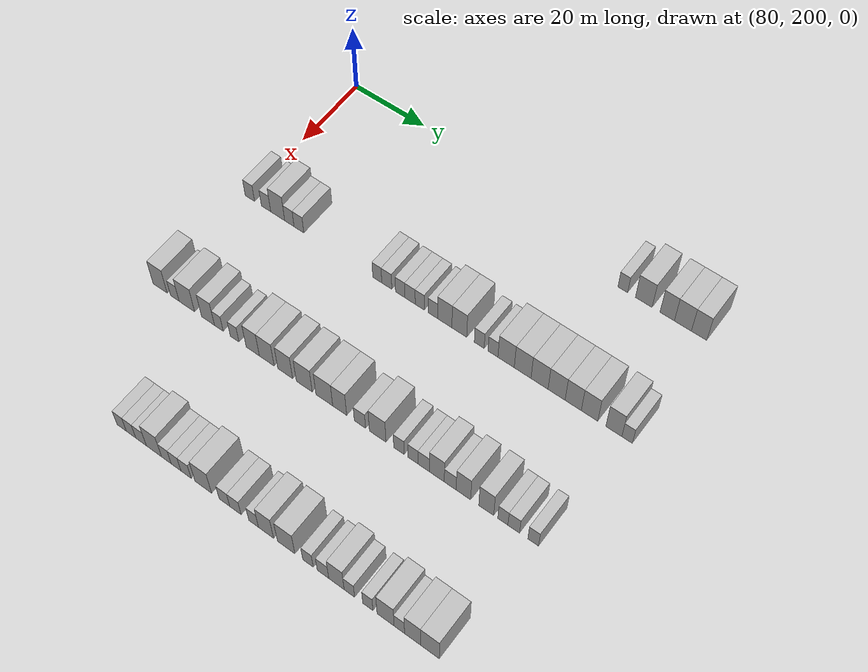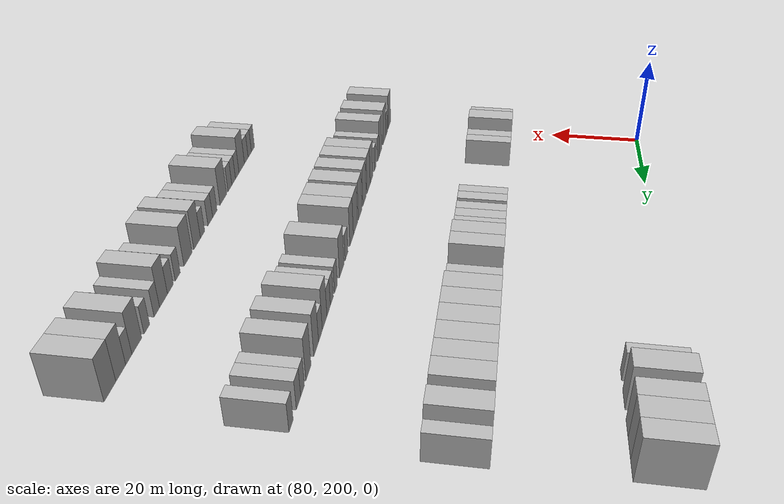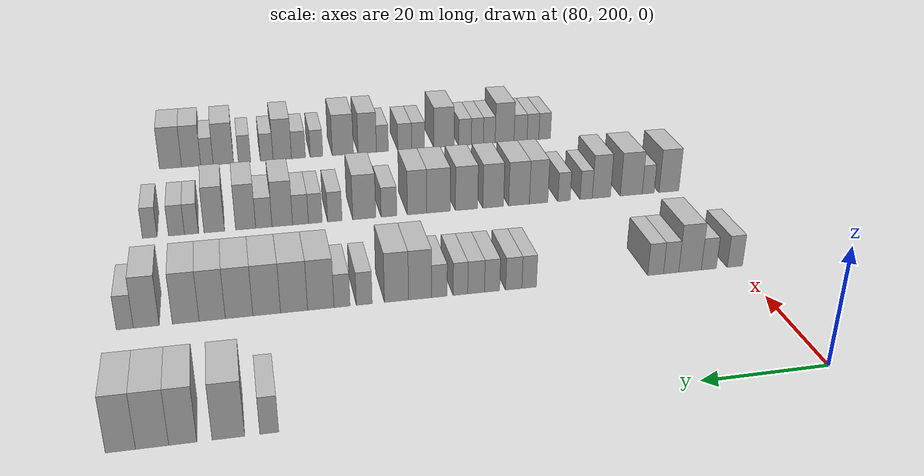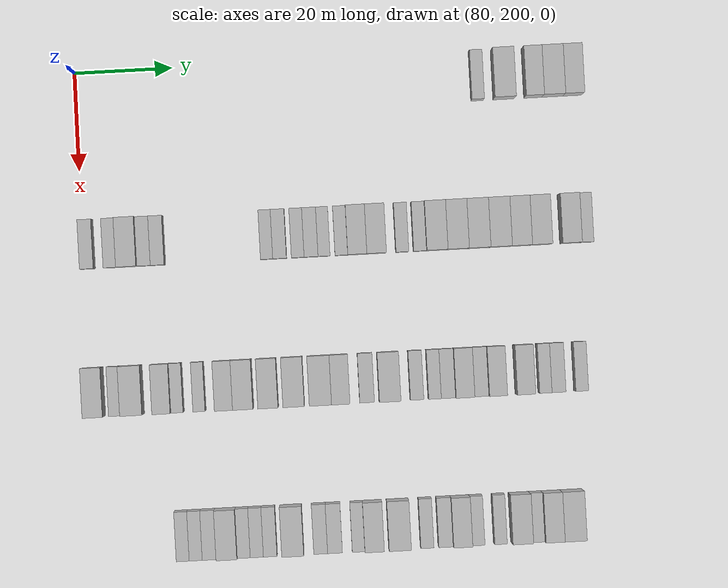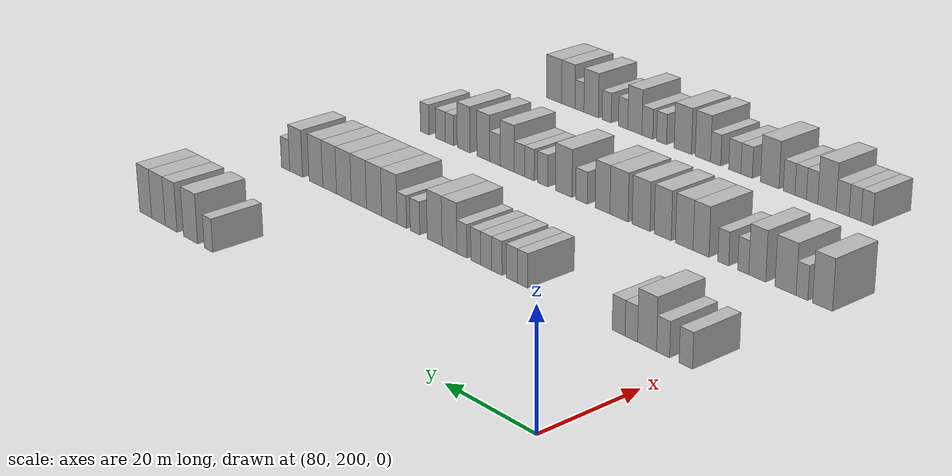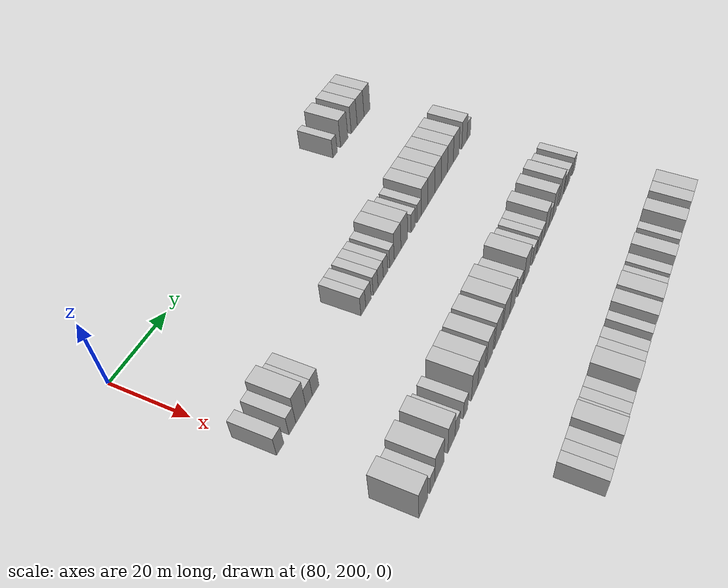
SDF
<sdf version="1.6">
 <world name="default">
  <model name="building_621">
   <static>1</static>
   <pose>85.0000 281.6081 0 0.000000 0.000000 0.000000</pose>
   <link name="link">
    <pose>0 0 3.00 0 0 0</pose>
    <collision name="collision"><geometry><box><size>10.0000 2.5139 6.0000</size></box></geometry></collision>
    <visual name="visual">
     <cast_shadows>0</cast_shadows>
     <geometry><box><size>10.0000 2.5139 6.0000</size></box></geometry>
     <material>
      <script>
       <uri>model://HANNAS_wall/materials/scripts</uri>
       <uri>model://HANNAS_wall/materials/textures</uri>
       <name>vrc/HANNAS_wall</name>
      </script>
     </material>
    </visual>
   </link>
  </model>
  <model name="building_622">
   <static>1</static>
   <pose>85.0000 287.0090 0 0.000000 0.000000 0.000000</pose>
   <link name="link">
    <pose>0 0 4.50 0 0 0</pose>
    <collision name="collision"><geometry><box><size>10.0000 4.2879 9.0000</size></box></geometry></collision>
    <visual name="visual">
     <cast_shadows>0</cast_shadows>
     <geometry><box><size>10.0000 4.2879 9.0000</size></box></geometry>
     <material>
      <script>
       <uri>model://HANNAS_wall/materials/scripts</uri>
       <uri>model://HANNAS_wall/materials/textures</uri>
       <name>vrc/HANNAS_wall</name>
      </script>
     </material>
    </visual>
   </link>
  </model>
  <model name="building_623">
   <static>1</static>
   <pose>85.0000 292.9761 0 0.000000 0.000000 0.000000</pose>
   <link name="link">
    <pose>0 0 4.50 0 0 0</pose>
    <collision name="collision"><geometry><box><size>10.0000 3.6462 9.0000</size></box></geometry></collision>
    <visual name="visual">
     <cast_shadows>0</cast_shadows>
     <geometry><box><size>10.0000 3.6462 9.0000</size></box></geometry>
     <material>
      <script>
       <uri>model://HANNAS_wall/materials/scripts</uri>
       <uri>model://HANNAS_wall/materials/textures</uri>
       <name>vrc/HANNAS_wall</name>
      </script>
     </material>
    </visual>
   </link>
  </model>
  <model name="building_624">
   <static>1</static>
   <pose>85.0000 296.9343 0 0.000000 0.000000 0.000000</pose>
   <link name="link">
    <pose>0 0 4.50 0 0 0</pose>
    <collision name="collision"><geometry><box><size>10.0000 4.2701 9.0000</size></box></geometry></collision>
    <visual name="visual">
     <cast_shadows>0</cast_shadows>
     <geometry><box><size>10.0000 4.2701 9.0000</size></box></geometry>
     <material>
      <script>
       <uri>model://HANNAS_wall/materials/scripts</uri>
       <uri>model://HANNAS_wall/materials/textures</uri>
       <name>vrc/HANNAS_wall</name>
      </script>
     </material>
    </visual>
   </link>
  </model>
  <model name="building_625">
   <static>1</static>
   <pose>85.0000 300.9873 0 0.000000 0.000000 0.000000</pose>
   <link name="link">
    <pose>0 0 4.50 0 0 0</pose>
    <collision name="collision"><geometry><box><size>10.0000 3.8361 9.0000</size></box></geometry></collision>
    <visual name="visual">
     <cast_shadows>0</cast_shadows>
     <geometry><box><size>10.0000 3.8361 9.0000</size></box></geometry>
     <material>
      <script>
       <uri>model://HANNAS_wall/materials/scripts</uri>
       <uri>model://HANNAS_wall/materials/textures</uri>
       <name>vrc/HANNAS_wall</name>
      </script>
     </material>
    </visual>
   </link>
  </model>
  <model name="building_826">
   <static>1</static>
   <pose>115.0000 200.7581 0 0.000000 0.000000 0.000000</pose>
   <link name="link">
    <pose>0 0 3.00 0 0 0</pose>
    <collision name="collision"><geometry><box><size>10.0000 2.7842 6.0000</size></box></geometry></collision>
    <visual name="visual">
     <cast_shadows>0</cast_shadows>
     <geometry><box><size>10.0000 2.7842 6.0000</size></box></geometry>
     <material>
      <script>
       <uri>model://HANNAS_wall/materials/scripts</uri>
       <uri>model://HANNAS_wall/materials/textures</uri>
       <name>vrc/HANNAS_wall</name>
      </script>
     </material>
    </visual>
   </link>
  </model>
  <model name="building_827">
   <static>1</static>
   <pose>115.0000 205.5155 0 0.000000 0.000000 0.000000</pose>
   <link name="link">
    <pose>0 0 3.00 0 0 0</pose>
    <collision name="collision"><geometry><box><size>10.0000 2.7307 6.0000</size></box></geometry></collision>
    <visual name="visual">
     <cast_shadows>0</cast_shadows>
     <geometry><box><size>10.0000 2.7307 6.0000</size></box></geometry>
     <material>
      <script>
       <uri>model://HANNAS_wall/materials/scripts</uri>
       <uri>model://HANNAS_wall/materials/textures</uri>
       <name>vrc/HANNAS_wall</name>
      </script>
     </material>
    </visual>
   </link>
  </model>
  <model name="building_828">
   <static>1</static>
   <pose>115.0000 208.9213 0 0.000000 0.000000 0.000000</pose>
   <link name="link">
    <pose>0 0 4.50 0 0 0</pose>
    <collision name="collision"><geometry><box><size>10.0000 4.0809 9.0000</size></box></geometry></collision>
    <visual name="visual">
     <cast_shadows>0</cast_shadows>
     <geometry><box><size>10.0000 4.0809 9.0000</size></box></geometry>
     <material>
      <script>
       <uri>model://HANNAS_wall/materials/scripts</uri>
       <uri>model://HANNAS_wall/materials/textures</uri>
       <name>vrc/HANNAS_wall</name>
      </script>
     </material>
    </visual>
   </link>
  </model>
  <model name="building_829">
   <static>1</static>
   <pose>115.0000 212.3199 0 0.000000 0.000000 0.000000</pose>
   <link name="link">
    <pose>0 0 3.00 0 0 0</pose>
    <collision name="collision"><geometry><box><size>10.0000 2.7162 6.0000</size></box></geometry></collision>
    <visual name="visual">
     <cast_shadows>0</cast_shadows>
     <geometry><box><size>10.0000 2.7162 6.0000</size></box></geometry>
     <material>
      <script>
       <uri>model://HANNAS_wall/materials/scripts</uri>
       <uri>model://HANNAS_wall/materials/textures</uri>
       <name>vrc/HANNAS_wall</name>
      </script>
     </material>
    </visual>
   </link>
  </model>
  <model name="building_830">
   <static>1</static>
   <pose>115.0000 215.0822 0 0.000000 0.000000 0.000000</pose>
   <link name="link">
    <pose>0 0 3.00 0 0 0</pose>
    <collision name="collision"><geometry><box><size>10.0000 2.8084 6.0000</size></box></geometry></collision>
    <visual name="visual">
     <cast_shadows>0</cast_shadows>
     <geometry><box><size>10.0000 2.8084 6.0000</size></box></geometry>
     <material>
      <script>
       <uri>model://HANNAS_wall/materials/scripts</uri>
       <uri>model://HANNAS_wall/materials/textures</uri>
       <name>vrc/HANNAS_wall</name>
      </script>
     </material>
    </visual>
   </link>
  </model>
  <model name="building_831">
   <static>1</static>
   <pose>115.0000 237.1993 0 0.000000 0.000000 0.000000</pose>
   <link name="link">
    <pose>0 0 3.00 0 0 0</pose>
    <collision name="collision"><geometry><box><size>10.0000 2.4753 6.0000</size></box></geometry></collision>
    <visual name="visual">
     <cast_shadows>0</cast_shadows>
     <geometry><box><size>10.0000 2.4753 6.0000</size></box></geometry>
     <material>
      <script>
       <uri>model://HANNAS_wall/materials/scripts</uri>
       <uri>model://HANNAS_wall/materials/textures</uri>
       <name>vrc/HANNAS_wall</name>
      </script>
     </material>
    </visual>
   </link>
  </model>
  <model name="building_832">
   <static>1</static>
   <pose>115.0000 239.8226 0 0.000000 0.000000 0.000000</pose>
   <link name="link">
    <pose>0 0 3.00 0 0 0</pose>
    <collision name="collision"><geometry><box><size>10.0000 2.7713 6.0000</size></box></geometry></collision>
    <visual name="visual">
     <cast_shadows>0</cast_shadows>
     <geometry><box><size>10.0000 2.7713 6.0000</size></box></geometry>
     <material>
      <script>
       <uri>model://HANNAS_wall/materials/scripts</uri>
       <uri>model://HANNAS_wall/materials/textures</uri>
       <name>vrc/HANNAS_wall</name>
      </script>
     </material>
    </visual>
   </link>
  </model>
  <model name="building_833">
   <static>1</static>
   <pose>115.0000 243.4948 0 0.000000 0.000000 0.000000</pose>
   <link name="link">
    <pose>0 0 3.00 0 0 0</pose>
    <collision name="collision"><geometry><box><size>10.0000 2.5731 6.0000</size></box></geometry></collision>
    <visual name="visual">
     <cast_shadows>0</cast_shadows>
     <geometry><box><size>10.0000 2.5731 6.0000</size></box></geometry>
     <material>
      <script>
       <uri>model://HANNAS_wall/materials/scripts</uri>
       <uri>model://HANNAS_wall/materials/textures</uri>
       <name>vrc/HANNAS_wall</name>
      </script>
     </material>
    </visual>
   </link>
  </model>
  <model name="building_834">
   <static>1</static>
   <pose>115.0000 246.1912 0 0.000000 0.000000 0.000000</pose>
   <link name="link">
    <pose>0 0 3.00 0 0 0</pose>
    <collision name="collision"><geometry><box><size>10.0000 2.8197 6.0000</size></box></geometry></collision>
    <visual name="visual">
     <cast_shadows>0</cast_shadows>
     <geometry><box><size>10.0000 2.8197 6.0000</size></box></geometry>
     <material>
      <script>
       <uri>model://HANNAS_wall/materials/scripts</uri>
       <uri>model://HANNAS_wall/materials/textures</uri>
       <name>vrc/HANNAS_wall</name>
      </script>
     </material>
    </visual>
   </link>
  </model>
  <model name="building_835">
   <static>1</static>
   <pose>115.0000 248.8176 0 0.000000 0.000000 0.000000</pose>
   <link name="link">
    <pose>0 0 3.00 0 0 0</pose>
    <collision name="collision"><geometry><box><size>10.0000 2.4330 6.0000</size></box></geometry></collision>
    <visual name="visual">
     <cast_shadows>0</cast_shadows>
     <geometry><box><size>10.0000 2.4330 6.0000</size></box></geometry>
     <material>
      <script>
       <uri>model://HANNAS_wall/materials/scripts</uri>
       <uri>model://HANNAS_wall/materials/textures</uri>
       <name>vrc/HANNAS_wall</name>
      </script>
     </material>
    </visual>
   </link>
  </model>
  <model name="building_836">
   <static>1</static>
   <pose>115.0000 252.3148 0 0.000000 0.000000 0.000000</pose>
   <link name="link">
    <pose>0 0 3.00 0 0 0</pose>
    <collision name="collision"><geometry><box><size>10.0000 2.5614 6.0000</size></box></geometry></collision>
    <visual name="visual">
     <cast_shadows>0</cast_shadows>
     <geometry><box><size>10.0000 2.5614 6.0000</size></box></geometry>
     <material>
      <script>
       <uri>model://HANNAS_wall/materials/scripts</uri>
       <uri>model://HANNAS_wall/materials/textures</uri>
       <name>vrc/HANNAS_wall</name>
      </script>
     </material>
    </visual>
   </link>
  </model>
  <model name="building_837">
   <static>1</static>
   <pose>115.0000 255.5168 0 0.000000 0.000000 0.000000</pose>
   <link name="link">
    <pose>0 0 4.50 0 0 0</pose>
    <collision name="collision"><geometry><box><size>10.0000 3.8425 9.0000</size></box></geometry></collision>
    <visual name="visual">
     <cast_shadows>0</cast_shadows>
     <geometry><box><size>10.0000 3.8425 9.0000</size></box></geometry>
     <material>
      <script>
       <uri>model://HANNAS_wall/materials/scripts</uri>
       <uri>model://HANNAS_wall/materials/textures</uri>
       <name>vrc/HANNAS_wall</name>
      </script>
     </material>
    </visual>
   </link>
  </model>
  <model name="building_838">
   <static>1</static>
   <pose>115.0000 259.4077 0 0.000000 0.000000 0.000000</pose>
   <link name="link">
    <pose>0 0 4.50 0 0 0</pose>
    <collision name="collision"><geometry><box><size>10.0000 3.9394 9.0000</size></box></geometry></collision>
    <visual name="visual">
     <cast_shadows>0</cast_shadows>
     <geometry><box><size>10.0000 3.9394 9.0000</size></box></geometry>
     <material>
      <script>
       <uri>model://HANNAS_wall/materials/scripts</uri>
       <uri>model://HANNAS_wall/materials/textures</uri>
       <name>vrc/HANNAS_wall</name>
      </script>
     </material>
    </visual>
   </link>
  </model>
  <model name="building_839">
   <static>1</static>
   <pose>115.0000 264.6693 0 0.000000 0.000000 0.000000</pose>
   <link name="link">
    <pose>0 0 3.00 0 0 0</pose>
    <collision name="collision"><geometry><box><size>10.0000 2.5838 6.0000</size></box></geometry></collision>
    <visual name="visual">
     <cast_shadows>0</cast_shadows>
     <geometry><box><size>10.0000 2.5838 6.0000</size></box></geometry>
     <material>
      <script>
       <uri>model://HANNAS_wall/materials/scripts</uri>
       <uri>model://HANNAS_wall/materials/textures</uri>
       <name>vrc/HANNAS_wall</name>
      </script>
     </material>
    </visual>
   </link>
  </model>
  <model name="building_840">
   <static>1</static>
   <pose>115.0000 268.2557 0 0.000000 0.000000 0.000000</pose>
   <link name="link">
    <pose>0 0 3.00 0 0 0</pose>
    <collision name="collision"><geometry><box><size>10.0000 2.5889 6.0000</size></box></geometry></collision>
    <visual name="visual">
     <cast_shadows>0</cast_shadows>
     <geometry><box><size>10.0000 2.5889 6.0000</size></box></geometry>
     <material>
      <script>
       <uri>model://HANNAS_wall/materials/scripts</uri>
       <uri>model://HANNAS_wall/materials/textures</uri>
       <name>vrc/HANNAS_wall</name>
      </script>
     </material>
    </visual>
   </link>
  </model>
  <model name="building_841">
   <static>1</static>
   <pose>115.0000 271.6655 0 0.000000 0.000000 0.000000</pose>
   <link name="link">
    <pose>0 0 4.50 0 0 0</pose>
    <collision name="collision"><geometry><box><size>10.0000 4.2307 9.0000</size></box></geometry></collision>
    <visual name="visual">
     <cast_shadows>0</cast_shadows>
     <geometry><box><size>10.0000 4.2307 9.0000</size></box></geometry>
     <material>
      <script>
       <uri>model://HANNAS_wall/materials/scripts</uri>
       <uri>model://HANNAS_wall/materials/textures</uri>
       <name>vrc/HANNAS_wall</name>
      </script>
     </material>
    </visual>
   </link>
  </model>
  <model name="building_842">
   <static>1</static>
   <pose>115.0000 275.9256 0 0.000000 0.000000 0.000000</pose>
   <link name="link">
    <pose>0 0 4.50 0 0 0</pose>
    <collision name="collision"><geometry><box><size>10.0000 4.2897 9.0000</size></box></geometry></collision>
    <visual name="visual">
     <cast_shadows>0</cast_shadows>
     <geometry><box><size>10.0000 4.2897 9.0000</size></box></geometry>
     <material>
      <script>
       <uri>model://HANNAS_wall/materials/scripts</uri>
       <uri>model://HANNAS_wall/materials/textures</uri>
       <name>vrc/HANNAS_wall</name>
      </script>
     </material>
    </visual>
   </link>
  </model>
  <model name="building_843">
   <static>1</static>
   <pose>115.0000 280.2471 0 0.000000 0.000000 0.000000</pose>
   <link name="link">
    <pose>0 0 4.50 0 0 0</pose>
    <collision name="collision"><geometry><box><size>10.0000 4.3532 9.0000</size></box></geometry></collision>
    <visual name="visual">
     <cast_shadows>0</cast_shadows>
     <geometry><box><size>10.0000 4.3532 9.0000</size></box></geometry>
     <material>
      <script>
       <uri>model://HANNAS_wall/materials/scripts</uri>
       <uri>model://HANNAS_wall/materials/textures</uri>
       <name>vrc/HANNAS_wall</name>
      </script>
     </material>
    </visual>
   </link>
  </model>
  <model name="building_844">
   <static>1</static>
   <pose>115.0000 284.5766 0 0.000000 0.000000 0.000000</pose>
   <link name="link">
    <pose>0 0 4.50 0 0 0</pose>
    <collision name="collision"><geometry><box><size>10.0000 4.3059 9.0000</size></box></geometry></collision>
    <visual name="visual">
     <cast_shadows>0</cast_shadows>
     <geometry><box><size>10.0000 4.3059 9.0000</size></box></geometry>
     <material>
      <script>
       <uri>model://HANNAS_wall/materials/scripts</uri>
       <uri>model://HANNAS_wall/materials/textures</uri>
       <name>vrc/HANNAS_wall</name>
      </script>
     </material>
    </visual>
   </link>
  </model>
  <model name="building_845">
   <static>1</static>
   <pose>115.0000 288.7550 0 0.000000 0.000000 0.000000</pose>
   <link name="link">
    <pose>0 0 4.50 0 0 0</pose>
    <collision name="collision"><geometry><box><size>10.0000 4.0509 9.0000</size></box></geometry></collision>
    <visual name="visual">
     <cast_shadows>0</cast_shadows>
     <geometry><box><size>10.0000 4.0509 9.0000</size></box></geometry>
     <material>
      <script>
       <uri>model://HANNAS_wall/materials/scripts</uri>
       <uri>model://HANNAS_wall/materials/textures</uri>
       <name>vrc/HANNAS_wall</name>
      </script>
     </material>
    </visual>
   </link>
  </model>
  <model name="building_846">
   <static>1</static>
   <pose>115.0000 292.8326 0 0.000000 0.000000 0.000000</pose>
   <link name="link">
    <pose>0 0 4.50 0 0 0</pose>
    <collision name="collision"><geometry><box><size>10.0000 4.1044 9.0000</size></box></geometry></collision>
    <visual name="visual">
     <cast_shadows>0</cast_shadows>
     <geometry><box><size>10.0000 4.1044 9.0000</size></box></geometry>
     <material>
      <script>
       <uri>model://HANNAS_wall/materials/scripts</uri>
       <uri>model://HANNAS_wall/materials/textures</uri>
       <name>vrc/HANNAS_wall</name>
      </script>
     </material>
    </visual>
   </link>
  </model>
  <model name="building_847">
   <static>1</static>
   <pose>115.0000 298.8447 0 0.000000 0.000000 0.000000</pose>
   <link name="link">
    <pose>0 0 4.50 0 0 0</pose>
    <collision name="collision"><geometry><box><size>10.0000 3.9199 9.0000</size></box></geometry></collision>
    <visual name="visual">
     <cast_shadows>0</cast_shadows>
     <geometry><box><size>10.0000 3.9199 9.0000</size></box></geometry>
     <material>
      <script>
       <uri>model://HANNAS_wall/materials/scripts</uri>
       <uri>model://HANNAS_wall/materials/textures</uri>
       <name>vrc/HANNAS_wall</name>
      </script>
     </material>
    </visual>
   </link>
  </model>
  <model name="building_848">
   <static>1</static>
   <pose>115.0000 302.0933 0 0.000000 0.000000 0.000000</pose>
   <link name="link">
    <pose>0 0 3.00 0 0 0</pose>
    <collision name="collision"><geometry><box><size>10.0000 2.5773 6.0000</size></box></geometry></collision>
    <visual name="visual">
     <cast_shadows>0</cast_shadows>
     <geometry><box><size>10.0000 2.5773 6.0000</size></box></geometry>
     <material>
      <script>
       <uri>model://HANNAS_wall/materials/scripts</uri>
       <uri>model://HANNAS_wall/materials/textures</uri>
       <name>vrc/HANNAS_wall</name>
      </script>
     </material>
    </visual>
   </link>
  </model>
  <model name="building_1054">
   <static>1</static>
   <pose>145.0000 200.5819 0 0.000000 0.000000 0.000000</pose>
   <link name="link">
    <pose>0 0 4.50 0 0 0</pose>
    <collision name="collision"><geometry><box><size>10.0000 4.0904 9.0000</size></box></geometry></collision>
    <visual name="visual">
     <cast_shadows>0</cast_shadows>
     <geometry><box><size>10.0000 4.0904 9.0000</size></box></geometry>
     <material>
      <script>
       <uri>model://HANNAS_wall/materials/scripts</uri>
       <uri>model://HANNAS_wall/materials/textures</uri>
       <name>vrc/HANNAS_wall</name>
      </script>
     </material>
    </visual>
   </link>
  </model>
  <model name="building_1055">
   <static>1</static>
   <pose>145.0000 204.8595 0 0.000000 0.000000 0.000000</pose>
   <link name="link">
    <pose>0 0 3.00 0 0 0</pose>
    <collision name="collision"><geometry><box><size>10.0000 2.4646 6.0000</size></box></geometry></collision>
    <visual name="visual">
     <cast_shadows>0</cast_shadows>
     <geometry><box><size>10.0000 2.4646 6.0000</size></box></geometry>
     <material>
      <script>
       <uri>model://HANNAS_wall/materials/scripts</uri>
       <uri>model://HANNAS_wall/materials/textures</uri>
       <name>vrc/HANNAS_wall</name>
      </script>
     </material>
    </visual>
   </link>
  </model>
  <model name="building_1056">
   <static>1</static>
   <pose>145.0000 208.3273 0 0.000000 0.000000 0.000000</pose>
   <link name="link">
    <pose>0 0 4.50 0 0 0</pose>
    <collision name="collision"><geometry><box><size>10.0000 4.4711 9.0000</size></box></geometry></collision>
    <visual name="visual">
     <cast_shadows>0</cast_shadows>
     <geometry><box><size>10.0000 4.4711 9.0000</size></box></geometry>
     <material>
      <script>
       <uri>model://HANNAS_wall/materials/scripts</uri>
       <uri>model://HANNAS_wall/materials/textures</uri>
       <name>vrc/HANNAS_wall</name>
      </script>
     </material>
    </visual>
   </link>
  </model>
  <model name="building_1057">
   <static>1</static>
   <pose>145.0000 214.4052 0 0.000000 0.000000 0.000000</pose>
   <link name="link">
    <pose>0 0 4.50 0 0 0</pose>
    <collision name="collision"><geometry><box><size>10.0000 3.6847 9.0000</size></box></geometry></collision>
    <visual name="visual">
     <cast_shadows>0</cast_shadows>
     <geometry><box><size>10.0000 3.6847 9.0000</size></box></geometry>
     <material>
      <script>
       <uri>model://HANNAS_wall/materials/scripts</uri>
       <uri>model://HANNAS_wall/materials/textures</uri>
       <name>vrc/HANNAS_wall</name>
      </script>
     </material>
    </visual>
   </link>
  </model>
  <model name="building_1058">
   <static>1</static>
   <pose>145.0000 217.4708 0 0.000000 0.000000 0.000000</pose>
   <link name="link">
    <pose>0 0 3.00 0 0 0</pose>
    <collision name="collision"><geometry><box><size>10.0000 2.4466 6.0000</size></box></geometry></collision>
    <visual name="visual">
     <cast_shadows>0</cast_shadows>
     <geometry><box><size>10.0000 2.4466 6.0000</size></box></geometry>
     <material>
      <script>
       <uri>model://HANNAS_wall/materials/scripts</uri>
       <uri>model://HANNAS_wall/materials/textures</uri>
       <name>vrc/HANNAS_wall</name>
      </script>
     </material>
    </visual>
   </link>
  </model>
  <model name="building_1059">
   <static>1</static>
   <pose>145.0000 221.9227 0 0.000000 0.000000 0.000000</pose>
   <link name="link">
    <pose>0 0 3.00 0 0 0</pose>
    <collision name="collision"><geometry><box><size>10.0000 2.4572 6.0000</size></box></geometry></collision>
    <visual name="visual">
     <cast_shadows>0</cast_shadows>
     <geometry><box><size>10.0000 2.4572 6.0000</size></box></geometry>
     <material>
      <script>
       <uri>model://HANNAS_wall/materials/scripts</uri>
       <uri>model://HANNAS_wall/materials/textures</uri>
       <name>vrc/HANNAS_wall</name>
      </script>
     </material>
    </visual>
   </link>
  </model>
  <model name="building_1060">
   <static>1</static>
   <pose>145.0000 226.9761 0 0.000000 0.000000 0.000000</pose>
   <link name="link">
    <pose>0 0 4.50 0 0 0</pose>
    <collision name="collision"><geometry><box><size>10.0000 3.6496 9.0000</size></box></geometry></collision>
    <visual name="visual">
     <cast_shadows>0</cast_shadows>
     <geometry><box><size>10.0000 3.6496 9.0000</size></box></geometry>
     <material>
      <script>
       <uri>model://HANNAS_wall/materials/scripts</uri>
       <uri>model://HANNAS_wall/materials/textures</uri>
       <name>vrc/HANNAS_wall</name>
      </script>
     </material>
    </visual>
   </link>
  </model>
  <model name="building_1061">
   <static>1</static>
   <pose>145.0000 230.8456 0 0.000000 0.000000 0.000000</pose>
   <link name="link">
    <pose>0 0 4.50 0 0 0</pose>
    <collision name="collision"><geometry><box><size>10.0000 4.0894 9.0000</size></box></geometry></collision>
    <visual name="visual">
     <cast_shadows>0</cast_shadows>
     <geometry><box><size>10.0000 4.0894 9.0000</size></box></geometry>
     <material>
      <script>
       <uri>model://HANNAS_wall/materials/scripts</uri>
       <uri>model://HANNAS_wall/materials/textures</uri>
       <name>vrc/HANNAS_wall</name>
      </script>
     </material>
    </visual>
   </link>
  </model>
  <model name="building_1062">
   <static>1</static>
   <pose>145.0000 235.9147 0 0.000000 0.000000 0.000000</pose>
   <link name="link">
    <pose>0 0 4.50 0 0 0</pose>
    <collision name="collision"><geometry><box><size>10.0000 4.0490 9.0000</size></box></geometry></collision>
    <visual name="visual">
     <cast_shadows>0</cast_shadows>
     <geometry><box><size>10.0000 4.0490 9.0000</size></box></geometry>
     <material>
      <script>
       <uri>model://HANNAS_wall/materials/scripts</uri>
       <uri>model://HANNAS_wall/materials/textures</uri>
       <name>vrc/HANNAS_wall</name>
      </script>
     </material>
    </visual>
   </link>
  </model>
  <model name="building_1063">
   <static>1</static>
   <pose>145.0000 241.0906 0 0.000000 0.000000 0.000000</pose>
   <link name="link">
    <pose>0 0 4.50 0 0 0</pose>
    <collision name="collision"><geometry><box><size>10.0000 4.3027 9.0000</size></box></geometry></collision>
    <visual name="visual">
     <cast_shadows>0</cast_shadows>
     <geometry><box><size>10.0000 4.3027 9.0000</size></box></geometry>
     <material>
      <script>
       <uri>model://HANNAS_wall/materials/scripts</uri>
       <uri>model://HANNAS_wall/materials/textures</uri>
       <name>vrc/HANNAS_wall</name>
      </script>
     </material>
    </visual>
   </link>
  </model>
  <model name="building_1064">
   <static>1</static>
   <pose>145.0000 246.4821 0 0.000000 0.000000 0.000000</pose>
   <link name="link">
    <pose>0 0 4.50 0 0 0</pose>
    <collision name="collision"><geometry><box><size>10.0000 4.4803 9.0000</size></box></geometry></collision>
    <visual name="visual">
     <cast_shadows>0</cast_shadows>
     <geometry><box><size>10.0000 4.4803 9.0000</size></box></geometry>
     <material>
      <script>
       <uri>model://HANNAS_wall/materials/scripts</uri>
       <uri>model://HANNAS_wall/materials/textures</uri>
       <name>vrc/HANNAS_wall</name>
      </script>
     </material>
    </visual>
   </link>
  </model>
  <model name="building_1065">
   <static>1</static>
   <pose>145.0000 250.5788 0 0.000000 0.000000 0.000000</pose>
   <link name="link">
    <pose>0 0 4.50 0 0 0</pose>
    <collision name="collision"><geometry><box><size>10.0000 3.7130 9.0000</size></box></geometry></collision>
    <visual name="visual">
     <cast_shadows>0</cast_shadows>
     <geometry><box><size>10.0000 3.7130 9.0000</size></box></geometry>
     <material>
      <script>
       <uri>model://HANNAS_wall/materials/scripts</uri>
       <uri>model://HANNAS_wall/materials/textures</uri>
       <name>vrc/HANNAS_wall</name>
      </script>
     </material>
    </visual>
   </link>
  </model>
  <model name="building_1066">
   <static>1</static>
   <pose>145.0000 255.9142 0 0.000000 0.000000 0.000000</pose>
   <link name="link">
    <pose>0 0 3.00 0 0 0</pose>
    <collision name="collision"><geometry><box><size>10.0000 2.9578 6.0000</size></box></geometry></collision>
    <visual name="visual">
     <cast_shadows>0</cast_shadows>
     <geometry><box><size>10.0000 2.9578 6.0000</size></box></geometry>
     <material>
      <script>
       <uri>model://HANNAS_wall/materials/scripts</uri>
       <uri>model://HANNAS_wall/materials/textures</uri>
       <name>vrc/HANNAS_wall</name>
      </script>
     </material>
    </visual>
   </link>
  </model>
  <model name="building_1067">
   <static>1</static>
   <pose>145.0000 260.5475 0 0.000000 0.000000 0.000000</pose>
   <link name="link">
    <pose>0 0 4.50 0 0 0</pose>
    <collision name="collision"><geometry><box><size>10.0000 4.3090 9.0000</size></box></geometry></collision>
    <visual name="visual">
     <cast_shadows>0</cast_shadows>
     <geometry><box><size>10.0000 4.3090 9.0000</size></box></geometry>
     <material>
      <script>
       <uri>model://HANNAS_wall/materials/scripts</uri>
       <uri>model://HANNAS_wall/materials/textures</uri>
       <name>vrc/HANNAS_wall</name>
      </script>
     </material>
    </visual>
   </link>
  </model>
  <model name="building_1068">
   <static>1</static>
   <pose>145.0000 266.0436 0 0.000000 0.000000 0.000000</pose>
   <link name="link">
    <pose>0 0 3.00 0 0 0</pose>
    <collision name="collision"><geometry><box><size>10.0000 2.6831 6.0000</size></box></geometry></collision>
    <visual name="visual">
     <cast_shadows>0</cast_shadows>
     <geometry><box><size>10.0000 2.6831 6.0000</size></box></geometry>
     <material>
      <script>
       <uri>model://HANNAS_wall/materials/scripts</uri>
       <uri>model://HANNAS_wall/materials/textures</uri>
       <name>vrc/HANNAS_wall</name>
      </script>
     </material>
    </visual>
   </link>
  </model>
  <model name="building_1069">
   <static>1</static>
   <pose>145.0000 269.6528 0 0.000000 0.000000 0.000000</pose>
   <link name="link">
    <pose>0 0 3.00 0 0 0</pose>
    <collision name="collision"><geometry><box><size>10.0000 2.5353 6.0000</size></box></geometry></collision>
    <visual name="visual">
     <cast_shadows>0</cast_shadows>
     <geometry><box><size>10.0000 2.5353 6.0000</size></box></geometry>
     <material>
      <script>
       <uri>model://HANNAS_wall/materials/scripts</uri>
       <uri>model://HANNAS_wall/materials/textures</uri>
       <name>vrc/HANNAS_wall</name>
      </script>
     </material>
    </visual>
   </link>
  </model>
  <model name="building_1070">
   <static>1</static>
   <pose>145.0000 272.3698 0 0.000000 0.000000 0.000000</pose>
   <link name="link">
    <pose>0 0 3.00 0 0 0</pose>
    <collision name="collision"><geometry><box><size>10.0000 2.8988 6.0000</size></box></geometry></collision>
    <visual name="visual">
     <cast_shadows>0</cast_shadows>
     <geometry><box><size>10.0000 2.8988 6.0000</size></box></geometry>
     <material>
      <script>
       <uri>model://HANNAS_wall/materials/scripts</uri>
       <uri>model://HANNAS_wall/materials/textures</uri>
       <name>vrc/HANNAS_wall</name>
      </script>
     </material>
    </visual>
   </link>
  </model>
  <model name="building_1071">
   <static>1</static>
   <pose>145.0000 275.6976 0 0.000000 0.000000 0.000000</pose>
   <link name="link">
    <pose>0 0 4.50 0 0 0</pose>
    <collision name="collision"><geometry><box><size>10.0000 3.7567 9.0000</size></box></geometry></collision>
    <visual name="visual">
     <cast_shadows>0</cast_shadows>
     <geometry><box><size>10.0000 3.7567 9.0000</size></box></geometry>
     <material>
      <script>
       <uri>model://HANNAS_wall/materials/scripts</uri>
       <uri>model://HANNAS_wall/materials/textures</uri>
       <name>vrc/HANNAS_wall</name>
      </script>
     </material>
    </visual>
   </link>
  </model>
  <model name="building_1072">
   <static>1</static>
   <pose>145.0000 279.0607 0 0.000000 0.000000 0.000000</pose>
   <link name="link">
    <pose>0 0 3.00 0 0 0</pose>
    <collision name="collision"><geometry><box><size>10.0000 2.9695 6.0000</size></box></geometry></collision>
    <visual name="visual">
     <cast_shadows>0</cast_shadows>
     <geometry><box><size>10.0000 2.9695 6.0000</size></box></geometry>
     <material>
      <script>
       <uri>model://HANNAS_wall/materials/scripts</uri>
       <uri>model://HANNAS_wall/materials/textures</uri>
       <name>vrc/HANNAS_wall</name>
      </script>
     </material>
    </visual>
   </link>
  </model>
  <model name="building_1073">
   <static>1</static>
   <pose>145.0000 282.3507 0 0.000000 0.000000 0.000000</pose>
   <link name="link">
    <pose>0 0 4.50 0 0 0</pose>
    <collision name="collision"><geometry><box><size>10.0000 3.6105 9.0000</size></box></geometry></collision>
    <visual name="visual">
     <cast_shadows>0</cast_shadows>
     <geometry><box><size>10.0000 3.6105 9.0000</size></box></geometry>
     <material>
      <script>
       <uri>model://HANNAS_wall/materials/scripts</uri>
       <uri>model://HANNAS_wall/materials/textures</uri>
       <name>vrc/HANNAS_wall</name>
      </script>
     </material>
    </visual>
   </link>
  </model>
  <model name="building_1074">
   <static>1</static>
   <pose>145.0000 287.9898 0 0.000000 0.000000 0.000000</pose>
   <link name="link">
    <pose>0 0 4.50 0 0 0</pose>
    <collision name="collision"><geometry><box><size>10.0000 3.6677 9.0000</size></box></geometry></collision>
    <visual name="visual">
     <cast_shadows>0</cast_shadows>
     <geometry><box><size>10.0000 3.6677 9.0000</size></box></geometry>
     <material>
      <script>
       <uri>model://HANNAS_wall/materials/scripts</uri>
       <uri>model://HANNAS_wall/materials/textures</uri>
       <name>vrc/HANNAS_wall</name>
      </script>
     </material>
    </visual>
   </link>
  </model>
  <model name="building_1075">
   <static>1</static>
   <pose>145.0000 292.0604 0 0.000000 0.000000 0.000000</pose>
   <link name="link">
    <pose>0 0 3.00 0 0 0</pose>
    <collision name="collision"><geometry><box><size>10.0000 2.4735 6.0000</size></box></geometry></collision>
    <visual name="visual">
     <cast_shadows>0</cast_shadows>
     <geometry><box><size>10.0000 2.4735 6.0000</size></box></geometry>
     <material>
      <script>
       <uri>model://HANNAS_wall/materials/scripts</uri>
       <uri>model://HANNAS_wall/materials/textures</uri>
       <name>vrc/HANNAS_wall</name>
      </script>
     </material>
    </visual>
   </link>
  </model>
  <model name="building_1076">
   <static>1</static>
   <pose>145.0000 294.7102 0 0.000000 0.000000 0.000000</pose>
   <link name="link">
    <pose>0 0 3.00 0 0 0</pose>
    <collision name="collision"><geometry><box><size>10.0000 2.8260 6.0000</size></box></geometry></collision>
    <visual name="visual">
     <cast_shadows>0</cast_shadows>
     <geometry><box><size>10.0000 2.8260 6.0000</size></box></geometry>
     <material>
      <script>
       <uri>model://HANNAS_wall/materials/scripts</uri>
       <uri>model://HANNAS_wall/materials/textures</uri>
       <name>vrc/HANNAS_wall</name>
      </script>
     </material>
    </visual>
   </link>
  </model>
  <model name="building_1077">
   <static>1</static>
   <pose>145.0000 299.4072 0 0.000000 0.000000 0.000000</pose>
   <link name="link">
    <pose>0 0 3.00 0 0 0</pose>
    <collision name="collision"><geometry><box><size>10.0000 2.5680 6.0000</size></box></geometry></collision>
    <visual name="visual">
     <cast_shadows>0</cast_shadows>
     <geometry><box><size>10.0000 2.5680 6.0000</size></box></geometry>
     <material>
      <script>
       <uri>model://HANNAS_wall/materials/scripts</uri>
       <uri>model://HANNAS_wall/materials/textures</uri>
       <name>vrc/HANNAS_wall</name>
      </script>
     </material>
    </visual>
   </link>
  </model>
  <model name="building_1273">
   <static>1</static>
   <pose>175.0000 217.0243 0 0.000000 0.000000 0.000000</pose>
   <link name="link">
    <pose>0 0 3.00 0 0 0</pose>
    <collision name="collision"><geometry><box><size>10.0000 2.6163 6.0000</size></box></geometry></collision>
    <visual name="visual">
     <cast_shadows>0</cast_shadows>
     <geometry><box><size>10.0000 2.6163 6.0000</size></box></geometry>
     <material>
      <script>
       <uri>model://HANNAS_wall/materials/scripts</uri>
       <uri>model://HANNAS_wall/materials/textures</uri>
       <name>vrc/HANNAS_wall</name>
      </script>
     </material>
    </visual>
   </link>
  </model>
  <model name="building_1274">
   <static>1</static>
   <pose>175.0000 219.6492 0 0.000000 0.000000 0.000000</pose>
   <link name="link">
    <pose>0 0 3.00 0 0 0</pose>
    <collision name="collision"><geometry><box><size>10.0000 2.6335 6.0000</size></box></geometry></collision>
    <visual name="visual">
     <cast_shadows>0</cast_shadows>
     <geometry><box><size>10.0000 2.6335 6.0000</size></box></geometry>
     <material>
      <script>
       <uri>model://HANNAS_wall/materials/scripts</uri>
       <uri>model://HANNAS_wall/materials/textures</uri>
       <name>vrc/HANNAS_wall</name>
      </script>
     </material>
    </visual>
   </link>
  </model>
  <model name="building_1275">
   <static>1</static>
   <pose>175.0000 222.4153 0 0.000000 0.000000 0.000000</pose>
   <link name="link">
    <pose>0 0 3.00 0 0 0</pose>
    <collision name="collision"><geometry><box><size>10.0000 2.8987 6.0000</size></box></geometry></collision>
    <visual name="visual">
     <cast_shadows>0</cast_shadows>
     <geometry><box><size>10.0000 2.8987 6.0000</size></box></geometry>
     <material>
      <script>
       <uri>model://HANNAS_wall/materials/scripts</uri>
       <uri>model://HANNAS_wall/materials/textures</uri>
       <name>vrc/HANNAS_wall</name>
      </script>
     </material>
    </visual>
   </link>
  </model>
  <model name="building_1276">
   <static>1</static>
   <pose>175.0000 225.9624 0 0.000000 0.000000 0.000000</pose>
   <link name="link">
    <pose>0 0 4.50 0 0 0</pose>
    <collision name="collision"><geometry><box><size>10.0000 4.1954 9.0000</size></box></geometry></collision>
    <visual name="visual">
     <cast_shadows>0</cast_shadows>
     <geometry><box><size>10.0000 4.1954 9.0000</size></box></geometry>
     <material>
      <script>
       <uri>model://HANNAS_wall/materials/scripts</uri>
       <uri>model://HANNAS_wall/materials/textures</uri>
       <name>vrc/HANNAS_wall</name>
      </script>
     </material>
    </visual>
   </link>
  </model>
  <model name="building_1277">
   <static>1</static>
   <pose>175.0000 229.3663 0 0.000000 0.000000 0.000000</pose>
   <link name="link">
    <pose>0 0 3.00 0 0 0</pose>
    <collision name="collision"><geometry><box><size>10.0000 2.6124 6.0000</size></box></geometry></collision>
    <visual name="visual">
     <cast_shadows>0</cast_shadows>
     <geometry><box><size>10.0000 2.6124 6.0000</size></box></geometry>
     <material>
      <script>
       <uri>model://HANNAS_wall/materials/scripts</uri>
       <uri>model://HANNAS_wall/materials/textures</uri>
       <name>vrc/HANNAS_wall</name>
      </script>
     </material>
    </visual>
   </link>
  </model>
  <model name="building_1278">
   <static>1</static>
   <pose>175.0000 232.0003 0 0.000000 0.000000 0.000000</pose>
   <link name="link">
    <pose>0 0 3.00 0 0 0</pose>
    <collision name="collision"><geometry><box><size>10.0000 2.6557 6.0000</size></box></geometry></collision>
    <visual name="visual">
     <cast_shadows>0</cast_shadows>
     <geometry><box><size>10.0000 2.6557 6.0000</size></box></geometry>
     <material>
      <script>
       <uri>model://HANNAS_wall/materials/scripts</uri>
       <uri>model://HANNAS_wall/materials/textures</uri>
       <name>vrc/HANNAS_wall</name>
      </script>
     </material>
    </visual>
   </link>
  </model>
  <model name="building_1279">
   <static>1</static>
   <pose>175.0000 234.7076 0 0.000000 0.000000 0.000000</pose>
   <link name="link">
    <pose>0 0 3.00 0 0 0</pose>
    <collision name="collision"><geometry><box><size>10.0000 2.7589 6.0000</size></box></geometry></collision>
    <visual name="visual">
     <cast_shadows>0</cast_shadows>
     <geometry><box><size>10.0000 2.7589 6.0000</size></box></geometry>
     <material>
      <script>
       <uri>model://HANNAS_wall/materials/scripts</uri>
       <uri>model://HANNAS_wall/materials/textures</uri>
       <name>vrc/HANNAS_wall</name>
      </script>
     </material>
    </visual>
   </link>
  </model>
  <model name="building_1280">
   <static>1</static>
   <pose>175.0000 239.3031 0 0.000000 0.000000 0.000000</pose>
   <link name="link">
    <pose>0 0 4.50 0 0 0</pose>
    <collision name="collision"><geometry><box><size>10.0000 4.4322 9.0000</size></box></geometry></collision>
    <visual name="visual">
     <cast_shadows>0</cast_shadows>
     <geometry><box><size>10.0000 4.4322 9.0000</size></box></geometry>
     <material>
      <script>
       <uri>model://HANNAS_wall/materials/scripts</uri>
       <uri>model://HANNAS_wall/materials/textures</uri>
       <name>vrc/HANNAS_wall</name>
      </script>
     </material>
    </visual>
   </link>
  </model>
  <model name="building_1281">
   <static>1</static>
   <pose>175.0000 244.9174 0 0.000000 0.000000 0.000000</pose>
   <link name="link">
    <pose>0 0 3.00 0 0 0</pose>
    <collision name="collision"><geometry><box><size>10.0000 2.7963 6.0000</size></box></geometry></collision>
    <visual name="visual">
     <cast_shadows>0</cast_shadows>
     <geometry><box><size>10.0000 2.7963 6.0000</size></box></geometry>
     <material>
      <script>
       <uri>model://HANNAS_wall/materials/scripts</uri>
       <uri>model://HANNAS_wall/materials/textures</uri>
       <name>vrc/HANNAS_wall</name>
      </script>
     </material>
    </visual>
   </link>
  </model>
  <model name="building_1282">
   <static>1</static>
   <pose>175.0000 247.8128 0 0.000000 0.000000 0.000000</pose>
   <link name="link">
    <pose>0 0 3.00 0 0 0</pose>
    <collision name="collision"><geometry><box><size>10.0000 2.9945 6.0000</size></box></geometry></collision>
    <visual name="visual">
     <cast_shadows>0</cast_shadows>
     <geometry><box><size>10.0000 2.9945 6.0000</size></box></geometry>
     <material>
      <script>
       <uri>model://HANNAS_wall/materials/scripts</uri>
       <uri>model://HANNAS_wall/materials/textures</uri>
       <name>vrc/HANNAS_wall</name>
      </script>
     </material>
    </visual>
   </link>
  </model>
  <model name="building_1283">
   <static>1</static>
   <pose>175.0000 252.5827 0 0.000000 0.000000 0.000000</pose>
   <link name="link">
    <pose>0 0 3.00 0 0 0</pose>
    <collision name="collision"><geometry><box><size>10.0000 2.5454 6.0000</size></box></geometry></collision>
    <visual name="visual">
     <cast_shadows>0</cast_shadows>
     <geometry><box><size>10.0000 2.5454 6.0000</size></box></geometry>
     <material>
      <script>
       <uri>model://HANNAS_wall/materials/scripts</uri>
       <uri>model://HANNAS_wall/materials/textures</uri>
       <name>vrc/HANNAS_wall</name>
      </script>
     </material>
    </visual>
   </link>
  </model>
  <model name="building_1284">
   <static>1</static>
   <pose>175.0000 255.8016 0 0.000000 0.000000 0.000000</pose>
   <link name="link">
    <pose>0 0 4.50 0 0 0</pose>
    <collision name="collision"><geometry><box><size>10.0000 3.8924 9.0000</size></box></geometry></collision>
    <visual name="visual">
     <cast_shadows>0</cast_shadows>
     <geometry><box><size>10.0000 3.8924 9.0000</size></box></geometry>
     <material>
      <script>
       <uri>model://HANNAS_wall/materials/scripts</uri>
       <uri>model://HANNAS_wall/materials/textures</uri>
       <name>vrc/HANNAS_wall</name>
      </script>
     </material>
    </visual>
   </link>
  </model>
  <model name="building_1285">
   <static>1</static>
   <pose>175.0000 260.9706 0 0.000000 0.000000 0.000000</pose>
   <link name="link">
    <pose>0 0 4.50 0 0 0</pose>
    <collision name="collision"><geometry><box><size>10.0000 4.4455 9.0000</size></box></geometry></collision>
    <visual name="visual">
     <cast_shadows>0</cast_shadows>
     <geometry><box><size>10.0000 4.4455 9.0000</size></box></geometry>
     <material>
      <script>
       <uri>model://HANNAS_wall/materials/scripts</uri>
       <uri>model://HANNAS_wall/materials/textures</uri>
       <name>vrc/HANNAS_wall</name>
      </script>
     </material>
    </visual>
   </link>
  </model>
  <model name="building_1286">
   <static>1</static>
   <pose>175.0000 266.5084 0 0.000000 0.000000 0.000000</pose>
   <link name="link">
    <pose>0 0 3.00 0 0 0</pose>
    <collision name="collision"><geometry><box><size>10.0000 2.6302 6.0000</size></box></geometry></collision>
    <visual name="visual">
     <cast_shadows>0</cast_shadows>
     <geometry><box><size>10.0000 2.6302 6.0000</size></box></geometry>
     <material>
      <script>
       <uri>model://HANNAS_wall/materials/scripts</uri>
       <uri>model://HANNAS_wall/materials/textures</uri>
       <name>vrc/HANNAS_wall</name>
      </script>
     </material>
    </visual>
   </link>
  </model>
  <model name="building_1287">
   <static>1</static>
   <pose>175.0000 270.2725 0 0.000000 0.000000 0.000000</pose>
   <link name="link">
    <pose>0 0 3.00 0 0 0</pose>
    <collision name="collision"><geometry><box><size>10.0000 2.8980 6.0000</size></box></geometry></collision>
    <visual name="visual">
     <cast_shadows>0</cast_shadows>
     <geometry><box><size>10.0000 2.8980 6.0000</size></box></geometry>
     <material>
      <script>
       <uri>model://HANNAS_wall/materials/scripts</uri>
       <uri>model://HANNAS_wall/materials/textures</uri>
       <name>vrc/HANNAS_wall</name>
      </script>
     </material>
    </visual>
   </link>
  </model>
  <model name="building_1288">
   <static>1</static>
   <pose>175.0000 273.6327 0 0.000000 0.000000 0.000000</pose>
   <link name="link">
    <pose>0 0 4.50 0 0 0</pose>
    <collision name="collision"><geometry><box><size>10.0000 3.8222 9.0000</size></box></geometry></collision>
    <visual name="visual">
     <cast_shadows>0</cast_shadows>
     <geometry><box><size>10.0000 3.8222 9.0000</size></box></geometry>
     <material>
      <script>
       <uri>model://HANNAS_wall/materials/scripts</uri>
       <uri>model://HANNAS_wall/materials/textures</uri>
       <name>vrc/HANNAS_wall</name>
      </script>
     </material>
    </visual>
   </link>
  </model>
  <model name="building_1289">
   <static>1</static>
   <pose>175.0000 276.8382 0 0.000000 0.000000 0.000000</pose>
   <link name="link">
    <pose>0 0 3.00 0 0 0</pose>
    <collision name="collision"><geometry><box><size>10.0000 2.5888 6.0000</size></box></geometry></collision>
    <visual name="visual">
     <cast_shadows>0</cast_shadows>
     <geometry><box><size>10.0000 2.5888 6.0000</size></box></geometry>
     <material>
      <script>
       <uri>model://HANNAS_wall/materials/scripts</uri>
       <uri>model://HANNAS_wall/materials/textures</uri>
       <name>vrc/HANNAS_wall</name>
      </script>
     </material>
    </visual>
   </link>
  </model>
  <model name="building_1290">
   <static>1</static>
   <pose>175.0000 281.3870 0 0.000000 0.000000 0.000000</pose>
   <link name="link">
    <pose>0 0 3.00 0 0 0</pose>
    <collision name="collision"><geometry><box><size>10.0000 2.5088 6.0000</size></box></geometry></collision>
    <visual name="visual">
     <cast_shadows>0</cast_shadows>
     <geometry><box><size>10.0000 2.5088 6.0000</size></box></geometry>
     <material>
      <script>
       <uri>model://HANNAS_wall/materials/scripts</uri>
       <uri>model://HANNAS_wall/materials/textures</uri>
       <name>vrc/HANNAS_wall</name>
      </script>
     </material>
    </visual>
   </link>
  </model>
  <model name="building_1291">
   <static>1</static>
   <pose>175.0000 285.7074 0 0.000000 0.000000 0.000000</pose>
   <link name="link">
    <pose>0 0 4.50 0 0 0</pose>
    <collision name="collision"><geometry><box><size>10.0000 4.1320 9.0000</size></box></geometry></collision>
    <visual name="visual">
     <cast_shadows>0</cast_shadows>
     <geometry><box><size>10.0000 4.1320 9.0000</size></box></geometry>
     <material>
      <script>
       <uri>model://HANNAS_wall/materials/scripts</uri>
       <uri>model://HANNAS_wall/materials/textures</uri>
       <name>vrc/HANNAS_wall</name>
      </script>
     </material>
    </visual>
   </link>
  </model>
  <model name="building_1292">
   <static>1</static>
   <pose>175.0000 289.0290 0 0.000000 0.000000 0.000000</pose>
   <link name="link">
    <pose>0 0 3.00 0 0 0</pose>
    <collision name="collision"><geometry><box><size>10.0000 2.5112 6.0000</size></box></geometry></collision>
    <visual name="visual">
     <cast_shadows>0</cast_shadows>
     <geometry><box><size>10.0000 2.5112 6.0000</size></box></geometry>
     <material>
      <script>
       <uri>model://HANNAS_wall/materials/scripts</uri>
       <uri>model://HANNAS_wall/materials/textures</uri>
       <name>vrc/HANNAS_wall</name>
      </script>
     </material>
    </visual>
   </link>
  </model>
  <model name="building_1293">
   <static>1</static>
   <pose>175.0000 292.2065 0 0.000000 0.000000 0.000000</pose>
   <link name="link">
    <pose>0 0 4.50 0 0 0</pose>
    <collision name="collision"><geometry><box><size>10.0000 3.8438 9.0000</size></box></geometry></collision>
    <visual name="visual">
     <cast_shadows>0</cast_shadows>
     <geometry><box><size>10.0000 3.8438 9.0000</size></box></geometry>
     <material>
      <script>
       <uri>model://HANNAS_wall/materials/scripts</uri>
       <uri>model://HANNAS_wall/materials/textures</uri>
       <name>vrc/HANNAS_wall</name>
      </script>
     </material>
    </visual>
   </link>
  </model>
  <model name="building_1294">
   <static>1</static>
   <pose>175.0000 296.3432 0 0.000000 0.000000 0.000000</pose>
   <link name="link">
    <pose>0 0 4.50 0 0 0</pose>
    <collision name="collision"><geometry><box><size>10.0000 4.4296 9.0000</size></box></geometry></collision>
    <visual name="visual">
     <cast_shadows>0</cast_shadows>
     <geometry><box><size>10.0000 4.4296 9.0000</size></box></geometry>
     <material>
      <script>
       <uri>model://HANNAS_wall/materials/scripts</uri>
       <uri>model://HANNAS_wall/materials/textures</uri>
       <name>vrc/HANNAS_wall</name>
      </script>
     </material>
    </visual>
   </link>
  </model>
 </world>
</sdf>
